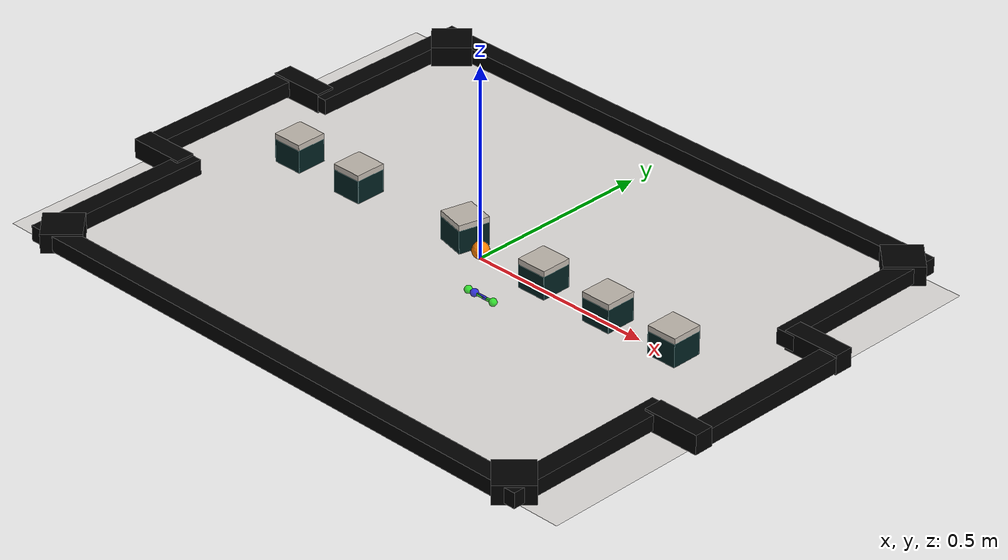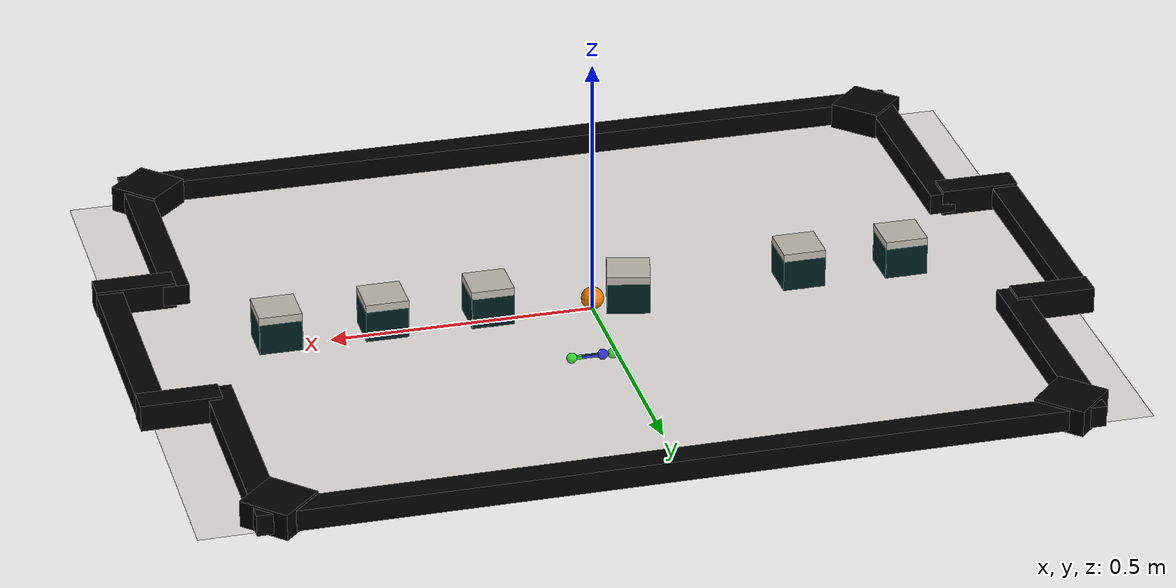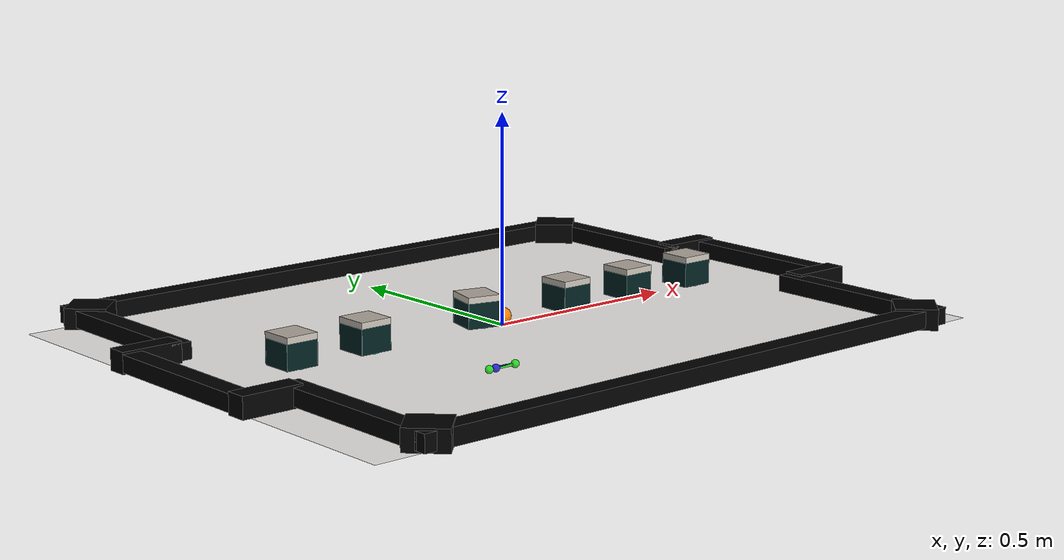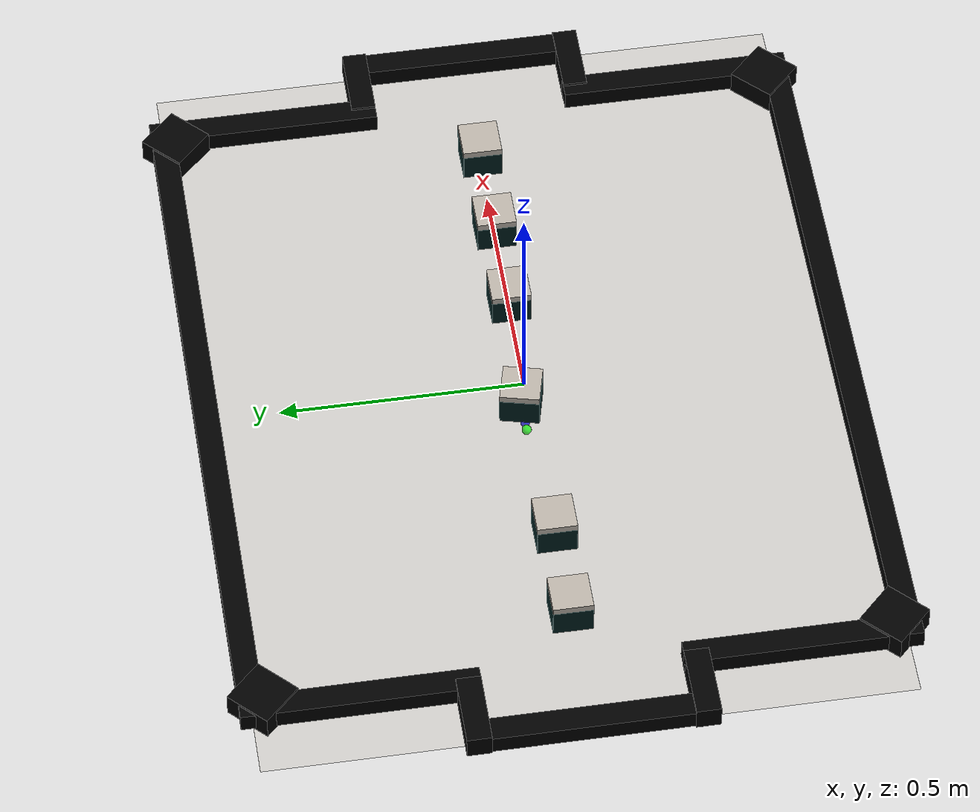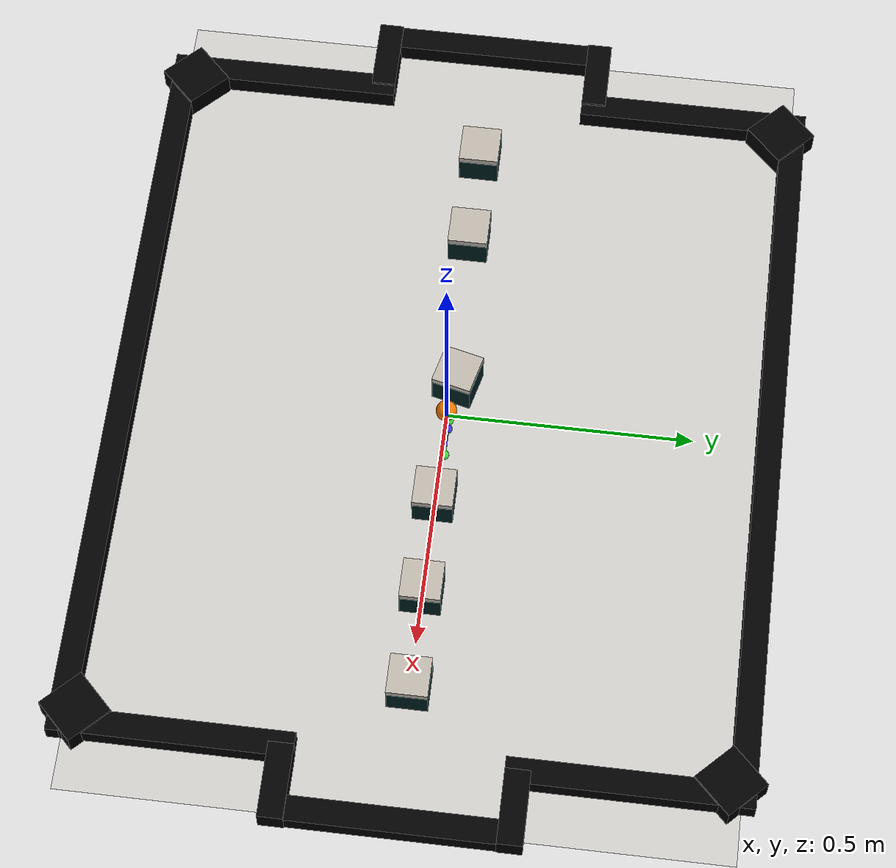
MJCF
<?xml version="1.0" encoding="utf-8"?>
<!-- Criado e disponibilizado por Bruno Brandão (brunobrandao1523@gmail.com). Obrigado! -->
<mujoco>
  <compiler angle="radian" inertiafromgeom="auto"/>
  <option timestep="0.001"/>
  <size njmax="800" nconmax="200"/>
  <default>
    <geom condim="3"/>
  </default>

  <asset>
    <texture name="Field" file="assets/field.png" gridsize="1 1" builtin="none" type="2d"/>
    <texture name="Tag1" builtin="none" type="cube" fileright="assets/black.png" fileleft="assets/black.png" fileup="assets/black.png"
    filedown="assets/black.png" filefront="assets/y1.png" fileback="assets/black.png" />
    <texture name="Tag2" builtin="none" type="cube" fileright="assets/black.png" fileleft="assets/black.png" fileup="assets/black.png"
    filedown="assets/black.png" filefront="assets/y2.png" fileback="assets/black.png" />
    <texture name="Tag3" builtin="none" type="cube" fileright="assets/black.png" fileleft="assets/black.png" fileup="assets/black.png"
    filedown="assets/black.png" filefront="assets/y3.png" fileback="assets/black.png" />
    <texture name="Tag4" builtin="none" type="cube" fileright="assets/black.png" fileleft="assets/black.png" fileup="assets/black.png"
    filedown="assets/black.png" filefront="assets/b1.png" fileback="assets/black.png" />
    <texture name="Tag5" builtin="none" type="cube" fileright="assets/black.png" fileleft="assets/black.png" fileup="assets/black.png"
    filedown="assets/black.png" filefront="assets/b2.png" fileback="assets/black.png" />
    <texture name="Tag6" builtin="none" type="cube" fileright="assets/black.png" fileleft="assets/black.png" fileup="assets/black.png"
    filedown="assets/black.png" filefront="assets/b3.png" fileback="assets/black.png" />
    <texture name="bodytex" builtin="none" type="cube" file="assets/black.png"/>
    <material name="field_paint" rgba="1 1 1 1" specular="0" emission="1" texture="Field" shininess="0"/>
    <material name="wall_material" rgba="0 0 0 1" shininess="0"/>
    <material name="body" rgba="0 1 1 1" texture="bodytex" shininess="0"/>
    <material name="tag01" rgba="1 1 1 1" texture="Tag1" shininess="0"/>
    <material name="tag02" rgba="1 1 1 1" texture="Tag2" shininess="0"/>
    <material name="tag03" rgba="1 1 1 1" texture="Tag3" shininess="0"/>
    <material name="tag04" rgba="1 1 1 1" texture="Tag4" shininess="0"/>
    <material name="tag05" rgba="1 1 1 1" texture="Tag5" shininess="0"/>
    <material name="tag06" rgba="1 1 1 1" texture="Tag6" shininess="0"/>
    <material name="ball_surf" rgba="1 0.5 0 1" emission="0.3" shininess="0.8"/>
    <material name="virtual_ball_surf" rgba="1 0.5 0 0.3" emission="0.3" shininess="0.8"/>
  </asset>

  <!--PISTA-->
  <worldbody>
    <geom conaffinity="1" contype="0" name="field" pos="0 0 0" size="0.875 0.65 10" material="field_paint" type="plane"/>
    <geom conaffinity="1" contype="0" name="upper_wall" pos="0 0.65 0.025" size="0.775 0.025 0.02"  material="wall_material" type="box"/>
    <geom conaffinity="1" contype="0" name="lower_wall" pos="0 -0.65 0.025" size="0.775 0.025 0.02" material="wall_material" type="box"/>
    <geom conaffinity="1" contype="0" name="left_goal" pos="-0.875 0 0.025" size="0.025 0.2 0.02" material="wall_material" type="box"/>
    <geom conaffinity="1" contype="0" name="right_goal" pos="0.875 0 0.025" size="0.025 0.2 0.02" material="wall_material" type="box"/>
    <geom conaffinity="1" contype="0" name="upper_right_corner" pos="0.75 0.425 0.025" size="0.025 0.225 0.02" material="wall_material" type="box"/>
    <geom conaffinity="1" contype="0" name="lower_right_corner" pos="0.75 -0.425 0.025" size="0.025 0.225 0.02" material="wall_material" type="box"/>
    <geom conaffinity="1" contype="0" name="upper_left_corner" pos="-0.75 0.425 0.025" size="0.025 0.225 0.02" material="wall_material" type="box"/>
    <geom conaffinity="1" contype="0" name="lower_left_corner" pos="-0.75 -0.425 0.025" size="0.025 0.225 0.02" material="wall_material" type="box"/>
    <geom conaffinity="1" contype="0" name="upper_right_pole" pos="0.825 0.225 0.025" size="0.075 0.025 0.025" material="wall_material" type="box"/>
    <geom conaffinity="1" contype="0" name="lower_right_pole" pos="0.825 -0.225 0.025" size="0.075 0.025 0.025" material="wall_material" type="box"/>
    <geom conaffinity="1" contype="0" name="upper_left_pole" pos="-0.825 0.225 0.025" size="0.075 0.025 0.025" material="wall_material" type="box"/>
    <geom conaffinity="1" contype="0" name="lower_left_pole" pos="-0.825 -0.225 0.025" size="0.075 0.025 0.025" material="wall_material" type="box"/>
    <geom conaffinity="1" contype="0" name="lower_left_triangle" pos="-0.725 -0.625 0.025" axisangle="0 0 1 0.785398163" size="0.04949747468 0.04949747468 0.025" material="wall_material" type="box"/>
    <geom conaffinity="1" contype="0" name="upper_left_triangle" pos="-0.725 0.625 0.025" axisangle="0 0 1 0.785398163" size="0.04949747468 0.04949747468 0.025" material="wall_material" type="box"/>
    <geom conaffinity="1" contype="0" name="lower_right_triangle" pos="0.725 -0.625 0.025" axisangle="0 0 1 0.785398163" size="0.04949747468 0.04949747468 0.025" material="wall_material" type="box"/>
    <geom conaffinity="1" contype="0" name="upper_right_triangle" pos="0.725 0.625 0.025" axisangle="0 0 1 0.785398163" size="0.04949747468 0.04949747468 0.025" material="wall_material" type="box"/>

  </worldbody>
  <!--PISTA-->

  <!--LUZES-->
  <worldbody>
    <light name="light_01" mode="fixed" pos="0.8 0 2" dir="-0.75 0 -1" cutoff="45"/>
    <light name="light_02" mode="fixed" pos="-0.8 0 2" dir="0.75 0 -1" cutoff="45"/>
  </worldbody>
  <!--LUZES-->

  <!--CAMERA-->
  <worldbody>
    <camera name="camera" mode="fixed" pos="0 -0.045 2.8" fovy="38.58"/>
  </worldbody>
  <!--CAMERA-->

  <!--BOLA-->
  <worldbody>
    <body name="ball" pos="0 0 0.022">
      <joint type="free" name="Ball"/>
      <inertial pos="0 0 0" mass="46" diaginertia="0.008387134 0.008387134 0.008387134"/>
      <geom conaffinity="1" contype="1" size="0.02135" material="ball_surf" type="sphere"/>
    </body>
  </worldbody>
  <!--BOLA-->

  <!-- INDICADORES -->
  <worldbody>
    <body name="target_1" mocap="true" pos="0 0 -0.1">
      <geom conaffinity="0" contype="0" size="0.02 0.003 0.003" rgba="0 0 1 1" type="box"/>
      <geom conaffinity="0" contype="0" pos="-0.02 0 0" size="0.01" rgba="0 0 1 1" type="sphere"/>
    </body>
    <body name="target_2" mocap="true" pos="0 0 -0.1">
      <geom conaffinity="0" contype="0" size="0.02 0.003 0.003" rgba="1 1 0 1" type="box"/>
      <geom conaffinity="0" contype="0" pos="-0.02 0 0" size="0.01" rgba="1 1 0 1" type="sphere"/>
    </body>
    <body name="target_3" mocap="true" pos="0 0 -0.1">
      <geom conaffinity="0" contype="0" size="0.02 0.003 0.003" rgba="1 0 0 1" type="box"/>
      <geom conaffinity="0" contype="0" pos="-0.02 0 0" size="0.01" rgba="1 0 0 1" type="sphere"/>
    </body>

    <body name="indicator_1" mocap="true" pos="0 0 -0.1">
      <geom conaffinity="0" contype="0" size="0.04 0.003 0.003" rgba="0 1 0 1" type="box"/>
      <geom conaffinity="0" contype="0" pos="0.04 0 0" size="0.01" rgba="0 1 0 1" type="sphere"/>
    </body>
    <body name="indicator_2" mocap="true" pos="0 0 -0.1">
      <geom conaffinity="0" contype="0" size="0.04 0.003 0.003" rgba="0 1 0 1" type="box"/>
      <geom conaffinity="0" contype="0" pos="0.04 0 0" size="0.01" rgba="0 1 0 1" type="sphere"/>
    </body>
    <body name="indicator_3" mocap="true" pos="0 0 -0.1">
      <geom conaffinity="0" contype="0" size="0.04 0.003 0.003" rgba="0 1 0 1" type="box"/>
      <geom conaffinity="0" contype="0" pos="0.04 0 0" size="0.01" rgba="0 1 0 1" type="sphere"/>
    </body>
    <body name="indicator_4" mocap="true" pos="0 0 -0.1">
      <geom conaffinity="0" contype="0" size="0.04 0.003 0.003" rgba="0 1 0 1" type="box"/>
      <geom conaffinity="0" contype="0" pos="-0.04 0 0" size="0.01" rgba="0 1 0 1" type="sphere"/>
    </body>
    <body name="indicator_5" mocap="true" pos="0 0 -0.1">
      <geom conaffinity="0" contype="0" size="0.04 0.003 0.003" rgba="0 1 0 1" type="box"/>
      <geom conaffinity="0" contype="0" pos="-0.04 0 0" size="0.01" rgba="0 1 0 1" type="sphere"/>
    </body>
    <body name="indicator_6" mocap="true" pos="0 0 -0.1">
      <geom conaffinity="0" contype="0" size="0.04 0.003 0.003" rgba="0 1 0 1" type="box"/>
      <geom conaffinity="0" contype="0" pos="-0.04 0 0" size="0.01" rgba="0 1 0 1" type="sphere"/>
    </body>
  </worldbody>

  <!-- POSIÇÕES VIRTUAIS -->
  <worldbody>
    <body name="virtual_ball" mocap="true" pos="0 0 -0.1">
      <geom conaffinity="0" contype="0" size="0.02135" material="virtual_ball_surf" type="sphere"/>
    </body>

    <body name="virtual_robot_1" mocap="true" pos="0 0 -0.1">
      <geom conaffinity="0" contype="0" size="0.04 0.04 0.04" rgba="1 1 0 0.3" type="box"/>
    </body>
    <body name="virtual_robot_2" mocap="true" pos="0 0 -0.1">
      <geom conaffinity="0" contype="0" size="0.04 0.04 0.04" rgba="1 1 0 0.3" type="box"/>
    </body>
    <body name="virtual_robot_3" mocap="true" pos="0 0 -0.1">
      <geom conaffinity="0" contype="0" size="0.04 0.04 0.04" rgba="1 1 0 0.3" type="box"/>
    </body>
    <body name="virtual_robot_4" mocap="true" pos="0 0 -0.1">
      <geom conaffinity="0" contype="0" size="0.04 0.04 0.04" rgba="0 0 1 0.3" type="box"/>
    </body>
    <body name="virtual_robot_5" mocap="true" pos="0 0 -0.1">
      <geom conaffinity="0" contype="0" size="0.04 0.04 0.04" rgba="0 0 1 0.3" type="box"/>
    </body>
    <body name="virtual_robot_6" mocap="true" pos="0 0 -0.1">
      <geom conaffinity="0" contype="0" size="0.04 0.04 0.04" rgba="0 0 1 0.3" type="box"/>
    </body>
  </worldbody>

  <!--ROBOS-->
  <worldbody>
    <body name="robot_01" pos="-0.6 0 0.04" axisangle="0 0 1 3.14159265359">
      <joint type="free" name="Robot_01"/>
      <inertial pos="0 0 -0.02" mass="500" diaginertia="0.132 0.2244 0.33"/> <!-- mass: 396 -->
      <geom conaffinity="1" contype="1"  size="0.04 0.03 0.03" rgba="0 0 1 1" type="box"/>
      <body name="left_wheel_01" pos="0 0.035 -0.002" quat="0.707141 0.707073 0 0" >
        <joint name="left_wheel_joint_01" pos="0 0 0" axis="0 0 -1" type="hinge"/>
        <inertial pos="0 0 0" mass="20" diaginertia="0.002736 0.002736 0.0054"/>
        <geom conaffinity="1" contype="1" size="0.03 0.003" rgba="0 1 1 1" type="cylinder"/>
      </body>
      <body name="right_wheel_01" pos="0 -0.035 -0.002" quat="0.707141 0.707073 0 0" >
        <joint name="right_wheel_joint_01" pos="0 0 0" axis="0 0 -1" type="hinge"/>
        <inertial pos="0 0 0" mass="20" diaginertia="0.002736 0.002736 0.0054"/>
        <geom conaffinity="1" contype="1" size="0.03 0.003" rgba="0 1 1 1" type="cylinder"/>
      </body>
      <body name="uniform_01" pos="0 0 0.0375">
        <geom name="hat01" conaffinity="1" contype="1" size="0.0405 0.0405 0.0075" material="tag01" type="box"/>
        <body name="front_01" pos="0.04 0 -0.0375">
          <geom conaffinity="1" contype="1" size="0.0005 0.0405 0.03" material="body" type="box"/>
        </body>
        <body name="back_01" pos="-0.04 0 -0.0375">
          <geom conaffinity="1" contype="1" size="0.0005 0.0405 0.03" material="body" type="box"/>
        </body>
        <body name="left_01" pos="0 0.04 -0.0375">
          <geom conaffinity="1" contype="1" size="0.0405 0.0005 0.03" material="body" type="box"/>
        </body>
        <body name="right_01" pos="0 -0.04 -0.0375">
          <geom conaffinity="1" contype="1" size="0.0405 0.0005 0.03" material="body" type="box"/>
        </body>
      </body>
    </body>
  </worldbody>

  <worldbody>
    <body name="robot_02" pos="-0.4 0 0.04" axisangle="0 0 1 3.14159265359">
      <joint type="free" name="Robot_02"/>
      <inertial pos="0 0 -0.02" mass="500" diaginertia="0.132 0.2244 0.33"/>
      <geom conaffinity="1" contype="1"  size="0.04 0.03 0.03" rgba="0 0 1 1" type="box"/>
      <body name="left_wheel_02" pos="0 0.035 -0.002" quat="0.707141 0.707073 0 0" >
        <joint name="left_wheel_joint_02" pos="0 0 0" axis="0 0 -1" type="hinge"/>
        <inertial pos="0 0 0" mass="20" diaginertia="0.002736 0.002736 0.0054"/>
        <geom conaffinity="1" contype="1" size="0.03 0.003" rgba="0 1 1 1" type="cylinder"/>
      </body>
      <body name="right_wheel_02" pos="0 -0.035 -0.002" quat="0.707141 0.707073 0 0" >
        <joint name="right_wheel_joint_02" pos="0 0 0" axis="0 0 -1" type="hinge"/>
        <inertial pos="0 0 0" mass="20" diaginertia="0.002736 0.002736 0.0054"/>
        <geom conaffinity="1" contype="1" size="0.03 0.003" rgba="0 1 1 1" type="cylinder"/>
      </body>
      <body name="uniform_02" pos="0 0 0.0375">
        <geom name="hat02" conaffinity="1" contype="1" size="0.0405 0.0405 0.0075" material="tag02" type="box"/>
        <body name="front_02" pos="0.04 0 -0.0375">
          <geom conaffinity="1" contype="1" size="0.0005 0.0405 0.03" material="body" type="box"/>
        </body>
        <body name="back_02" pos="-0.04 0 -0.0375">
          <geom conaffinity="1" contype="1" size="0.0005 0.0405 0.03" material="body" type="box"/>
        </body>
        <body name="left_02" pos="0 0.04 -0.0375">
          <geom conaffinity="1" contype="1" size="0.0405 0.0005 0.03" material="body" type="box"/>
        </body>
        <body name="right_02" pos="0 -0.04 -0.0375">
          <geom conaffinity="1" contype="1" size="0.0405 0.0005 0.03" material="body" type="box"/>
        </body>
      </body>
    </body>
  </worldbody>

  <worldbody>
    <body name="robot_03" pos="-0.065 0.015 0.04" axisangle="0 0 1 2.9">
      <joint type="free" name="Robot_03"/>
      <inertial pos="0 0 -0.02" mass="500" diaginertia="0.132 0.2244 0.33"/>
      <geom conaffinity="1" contype="1"  size="0.04 0.03 0.03" rgba="0 0 1 1" type="box"/>
      <body name="left_wheel_03" pos="0 0.035 -0.002" quat="0.707141 0.707073 0 0" >
        <joint name="left_wheel_joint_03" pos="0 0 0" axis="0 0 -1" type="hinge"/>
        <inertial pos="0 0 0" mass="20" diaginertia="0.002736 0.002736 0.0054"/>
        <geom conaffinity="1" contype="1" size="0.03 0.003" rgba="0 1 1 1" type="cylinder"/>
      </body>
      <body name="right_wheel_03" pos="0 -0.035 -0.002" quat="0.707141 0.707073 0 0" >
        <joint name="right_wheel_joint_03" pos="0 0 0" axis="0 0 -1" type="hinge"/>
        <inertial pos="0 0 0" mass="20" diaginertia="0.002736 0.002736 0.0054"/>
        <geom conaffinity="1" contype="1" size="0.03 0.003" rgba="0 1 1 1" type="cylinder"/>
      </body>
      <body name="uniform_03" pos="0 0 0.0375">
        <geom name="hat03" conaffinity="1" contype="1" size="0.0405 0.0405 0.0075" material="tag03" type="box"/>
        <body name="front_03" pos="0.04 0 -0.0375">
          <geom conaffinity="1" contype="1" size="0.0005 0.0405 0.03" material="body" type="box"/>
        </body>
        <body name="back_03" pos="-0.04 0 -0.0375">
          <geom conaffinity="1" contype="1" size="0.0005 0.0405 0.03" material="body" type="box"/>
        </body>
        <body name="left_03" pos="0 0.04 -0.0375">
          <geom conaffinity="1" contype="1" size="0.0405 0.0005 0.03" material="body" type="box"/>
        </body>
        <body name="right_03" pos="0 -0.04 -0.0375">
          <geom conaffinity="1" contype="1" size="0.0405 0.0005 0.03" material="body" type="box"/>
        </body>
      </body>
    </body>
  </worldbody>

  <worldbody>
    <body name="robot_04" pos="0.2 0 0.04" axisangle="0 0 1 0">
      <joint type="free" name="Robot_04"/>
      <inertial pos="0 0 -0.02" mass="500" diaginertia="0.132 0.2244 0.33"/>
      <geom conaffinity="1" contype="1"  size="0.04 0.03 0.03" rgba="0 0 1 1" type="box"/>
      <body name="left_wheel_04" pos="0 0.035 -0.002" quat="0.707141 0.707073 0 0" >
        <joint name="left_wheel_joint_04" pos="0 0 0" axis="0 0 -1" type="hinge"/>
        <inertial pos="0 0 0" mass="20" diaginertia="0.002736 0.002736 0.0054"/>
        <geom conaffinity="1" contype="1" size="0.03 0.003" rgba="0 1 1 1" type="cylinder"/>
      </body>
      <body name="right_wheel_04" pos="0 -0.035 -0.002" quat="0.707141 0.707073 0 0" >
        <joint name="right_wheel_joint_04" pos="0 0 0" axis="0 0 -1" type="hinge"/>
        <inertial pos="0 0 0" mass="20" diaginertia="0.002736 0.002736 0.0054"/>
        <geom conaffinity="1" contype="1" size="0.03 0.003" rgba="0 1 1 1" type="cylinder"/>
      </body>
      <body name="uniform_04" pos="0 0 0.0375">
        <geom name="hat04" conaffinity="1" contype="1" size="0.0405 0.0405 0.0075" material="tag04" type="box"/>
        <body name="front_04" pos="0.04 0 -0.0375">
          <geom conaffinity="1" contype="1" size="0.0005 0.0405 0.03" material="body" type="box"/>
        </body>
        <body name="back_04" pos="-0.04 0 -0.0375">
          <geom conaffinity="1" contype="1" size="0.0005 0.0405 0.03" material="body" type="box"/>
        </body>
        <body name="left_04" pos="0 0.04 -0.0375">
          <geom conaffinity="1" contype="1" size="0.0405 0.0005 0.03" material="body" type="box"/>
        </body>
        <body name="right_04" pos="0 -0.04 -0.0375">
          <geom conaffinity="1" contype="1" size="0.0405 0.0005 0.03" material="body" type="box"/>
        </body>
      </body>
    </body>
  </worldbody>

  <worldbody>
    <body name="robot_05" pos="0.4 0 0.04" axisangle="0 0 1 0">
      <joint type="free" name="Robot_05"/>
      <inertial pos="0 0 -0.02" mass="500" diaginertia="0.132 0.2244 0.33"/>
      <geom conaffinity="1" contype="1"  size="0.04 0.03 0.03" rgba="0 0 1 1" type="box"/>
      <body name="left_wheel_05" pos="0 0.035 -0.002" quat="0.707141 0.707073 0 0" >
        <joint name="left_wheel_joint_05" pos="0 0 0" axis="0 0 -1" type="hinge"/>
        <inertial pos="0 0 0" mass="20" diaginertia="0.002736 0.002736 0.0054"/>
        <geom conaffinity="1" contype="1" size="0.03 0.003" rgba="0 1 1 1" type="cylinder"/>
      </body>
      <body name="right_wheel_05" pos="0 -0.035 -0.002" quat="0.707141 0.707073 0 0" >
        <joint name="right_wheel_joint_05" pos="0 0 0" axis="0 0 -1" type="hinge"/>
        <inertial pos="0 0 0" mass="20" diaginertia="0.002736 0.002736 0.0054"/>
        <geom conaffinity="1" contype="1" size="0.03 0.003" rgba="0 1 1 1" type="cylinder"/>
      </body>
      <body name="uniform_05" pos="0 0 0.0375">
        <geom name="hat05" conaffinity="1" contype="1" size="0.0405 0.0405 0.0075" material="tag05" type="box"/>
        <body name="front_05" pos="0.04 0 -0.0375">
          <geom conaffinity="1" contype="1" size="0.0005 0.0405 0.03" material="body" type="box"/>
        </body>
        <body name="back_05" pos="-0.04 0 -0.0375">
          <geom conaffinity="1" contype="1" size="0.0005 0.0405 0.03" material="body" type="box"/>
        </body>
        <body name="left_05" pos="0 0.04 -0.0375">
          <geom conaffinity="1" contype="1" size="0.0405 0.0005 0.03" material="body" type="box"/>
        </body>
        <body name="right_05" pos="0 -0.04 -0.0375">
          <geom conaffinity="1" contype="1" size="0.0405 0.0005 0.03" material="body" type="box"/>
        </body>
      </body>
    </body>
  </worldbody>

  <worldbody>
    <body name="robot_06" pos="0.6 0 0.04" axisangle="0 0 1 0">
      <joint type="free" name="Robot_06"/>
      <inertial pos="0 0 -0.02" mass="500" diaginertia="0.132 0.2244 0.33"/>
      <geom conaffinity="1" contype="1"  size="0.04 0.03 0.03" rgba="0 0 1 1" type="box"/>
      <body name="left_wheel_06" pos="0 0.035 -0.002" quat="0.707141 0.707073 0 0" >
        <joint name="left_wheel_joint_06" pos="0 0 0" axis="0 0 -1" type="hinge"/>
        <inertial pos="0 0 0" mass="20" diaginertia="0.002736 0.002736 0.0054"/>
        <geom conaffinity="1" contype="1" size="0.03 0.003" rgba="0 1 1 1" type="cylinder"/>
      </body>
      <body name="right_wheel_06" pos="0 -0.035 -0.002" quat="0.707141 0.707073 0 0" >
        <joint name="right_wheel_joint_06" pos="0 0 0" axis="0 0 -1" type="hinge"/>
        <inertial pos="0 0 0" mass="20" diaginertia="0.002736 0.002736 0.0054"/>
        <geom conaffinity="1" contype="1" size="0.03 0.003" rgba="0 1 1 1" type="cylinder"/>
      </body>
      <body name="uniform_06" pos="0 0 0.0375">
        <geom name="hat06" conaffinity="1" contype="1" size="0.0405 0.0405 0.0075" material="tag06" type="box"/>
        <body name="front_06" pos="0.04 0 -0.0375">
          <geom conaffinity="1" contype="1" size="0.0005 0.0405 0.03" material="body" type="box"/>
        </body>
        <body name="back_06" pos="-0.04 0 -0.0375">
          <geom conaffinity="1" contype="1" size="0.0005 0.0405 0.03" material="body" type="box"/>
        </body>
        <body name="left_06" pos="0 0.04 -0.0375">
          <geom conaffinity="1" contype="1" size="0.0405 0.0005 0.03" material="body" type="box"/>
        </body>
        <body name="right_06" pos="0 -0.04 -0.0375">
          <geom conaffinity="1" contype="1" size="0.0405 0.0005 0.03" material="body" type="box"/>
        </body>
      </body>
    </body>
  </worldbody>

  <actuator>
    <velocity name="a1" joint="left_wheel_joint_01" kv="1"/>
    <velocity joint="right_wheel_joint_01" kv="1"/>
    <velocity joint="left_wheel_joint_02" kv="1"/>
    <velocity joint="right_wheel_joint_02" kv="1"/>
    <velocity joint="left_wheel_joint_03" kv="1"/>
    <velocity joint="right_wheel_joint_03" kv="1"/>
    <velocity joint="left_wheel_joint_04" kv="1"/>
    <velocity joint="right_wheel_joint_04" kv="1"/>
    <velocity joint="left_wheel_joint_05" kv="1"/>
    <velocity joint="right_wheel_joint_05" kv="1"/>
    <velocity joint="left_wheel_joint_06" kv="1"/>
    <velocity joint="right_wheel_joint_06" kv="1"/>
  </actuator>
</mujoco>
